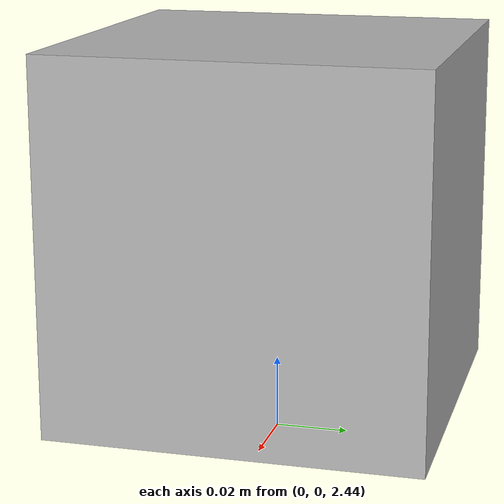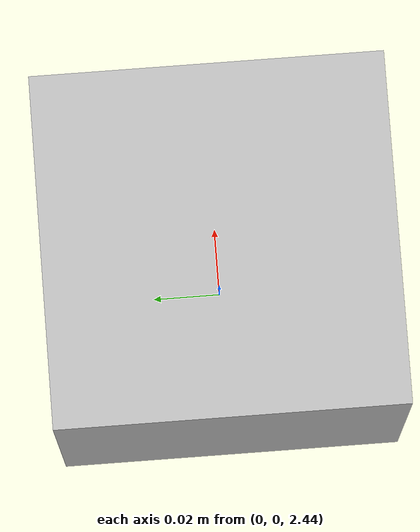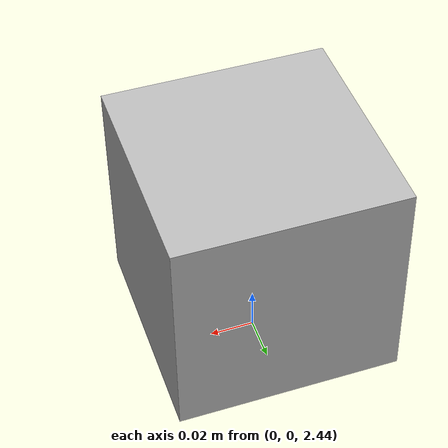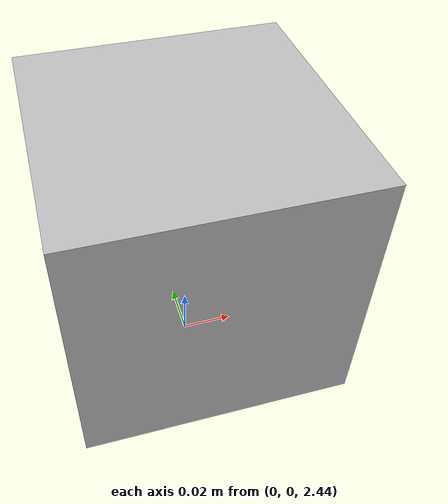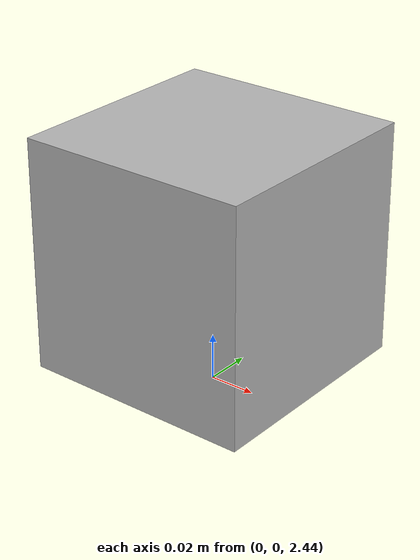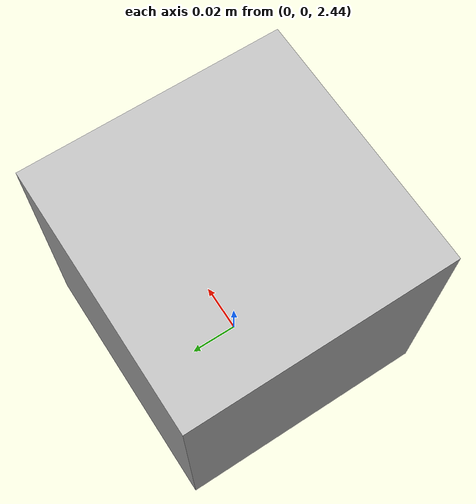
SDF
<sdf version="1.6">
 <world name="default">
  <light name="sun" type="directional">
   <pose>0 0 10 0 -0 0</pose>
   <diffuse>0.8 0.8 0.8 1</diffuse>
   <specular>0.2 0.2 0.2 1</specular>
   <attenuation>
    <range>1000</range>
    <constant>0.9</constant>
    <linear>0.01</linear>
    <quadratic>0.001</quadratic>
   </attenuation>
   <direction>-0.5 0.1 -0.9</direction>
  </light>
  <model name="ground_plane">
   <static>1</static>
   <link name="link">
    <collision name="collision">
     <geometry><plane><normal>0 0 1</normal><size>100 100</size></plane></geometry>
     <surface>
      <contact><collide_bitmask>65535</collide_bitmask></contact>
      <friction><ode><mu>100</mu><mu2>50</mu2></ode></friction>
     </surface>
    </collision>
    <visual name="visual">
     <cast_shadows>0</cast_shadows>
     <geometry><plane><normal>0 0 1</normal><size>100 100</size></plane></geometry>
     <material>
      <script><uri>file://media/materials/scripts/gazebo.material</uri><name>Gazebo/Grey</name></script>
     </material>
    </visual>
   </link>
  </model>
  <model name="camera">
   <static>1</static>
   <link name="camera_link">
    <pose>0 0 2.5 0 1.57 0</pose>
    <collision name="collision"><geometry><box><size>0.1 0.1 0.1</size></box></geometry></collision>
    <visual name="visual"><geometry><box><size>0.1 0.1 0.1</size></box></geometry></visual>
    <sensor type="camera" name="camera1">
     <update_rate>30.0</update_rate>
     <camera name="head">
      <horizontal_fov>1.3962634</horizontal_fov>
      <image><width>800</width><height>800</height><format>R8G8B8</format></image>
      <clip><near>0.02</near><far>300</far></clip>
      <noise><type>gaussian</type><mean>0.0</mean><stddev>0.007</stddev></noise>
     </camera>
     <plugin name="camera_controller" filename="libgazebo_ros_camera.so">
      <alwaysOn>true</alwaysOn>
      <updateRate>0.0</updateRate>
      <cameraName>gazebo_demo/camera</cameraName>
      <imageTopicName>image_raw</imageTopicName>
      <cameraInfoTopicName>camera_info</cameraInfoTopicName>
      <frameName>camera_link</frameName>
      <hackBaseline>0.07</hackBaseline>
      <distortionK1>0.0</distortionK1>
      <distortionK2>0.0</distortionK2>
      <distortionK3>0.0</distortionK3>
      <distortionT1>0.0</distortionT1>
      <distortionT2>0.0</distortionT2>
     </plugin>
    </sensor>
   </link>
  </model>
  <gravity>0 0 -9.8</gravity>
  <magnetic_field>6e-06 2.3e-05 -4.2e-05</magnetic_field>
  <atmosphere type="adiabatic"/>
  <physics name="default_physics" default="0" type="ode">
   <max_step_size>0.001</max_step_size>
   <real_time_factor>1</real_time_factor>
   <real_time_update_rate>1000</real_time_update_rate>
  </physics>
  <scene><ambient>0.4 0.4 0.4 1</ambient><background>0.7 0.7 0.7 1</background><shadows>1</shadows></scene>
  <spherical_coordinates>
   <surface_model>EARTH_WGS84</surface_model>
   <latitude_deg>0</latitude_deg>
   <longitude_deg>0</longitude_deg>
   <elevation>0</elevation>
   <heading_deg>0</heading_deg>
  </spherical_coordinates>
 </world>
</sdf>
